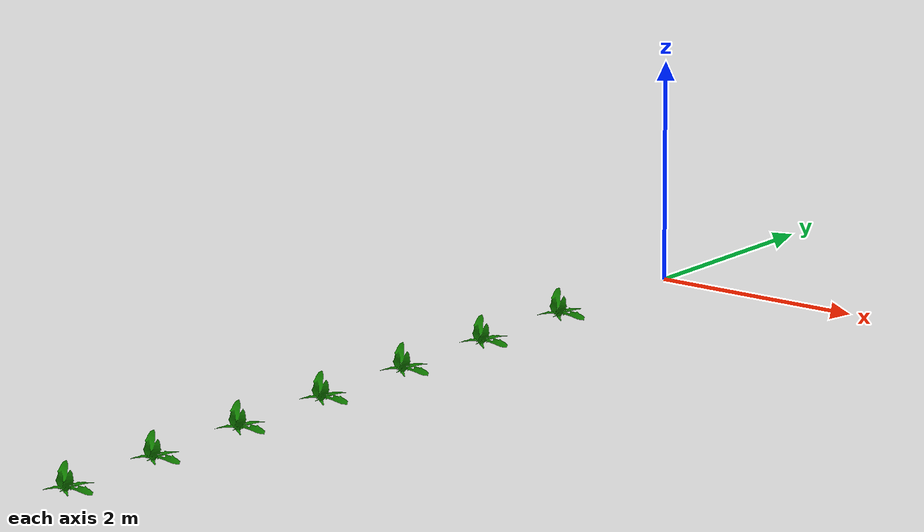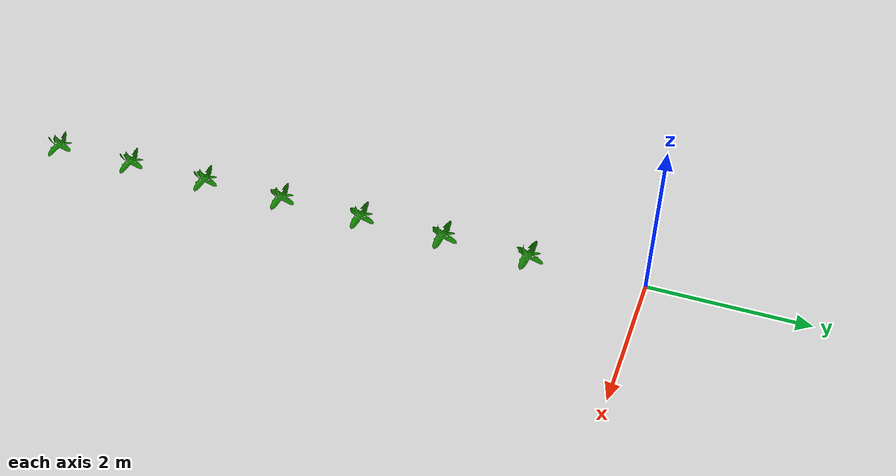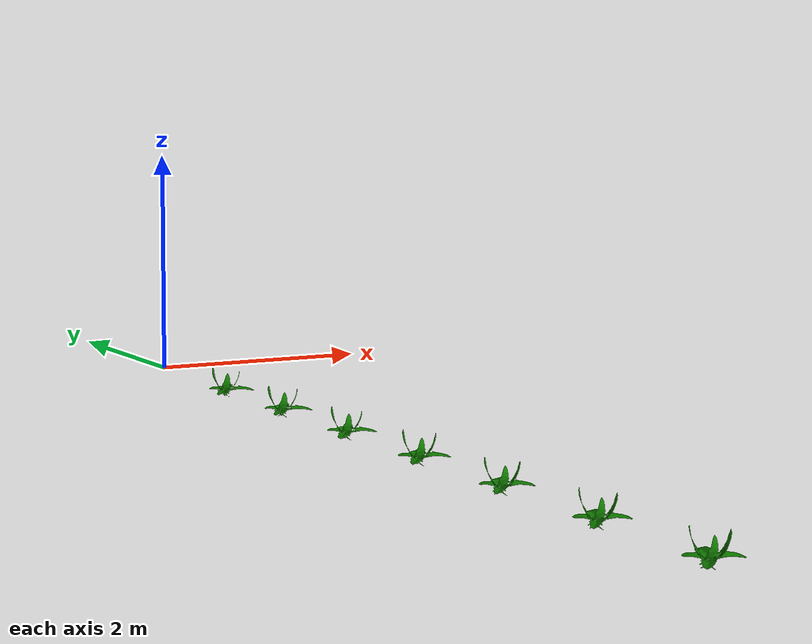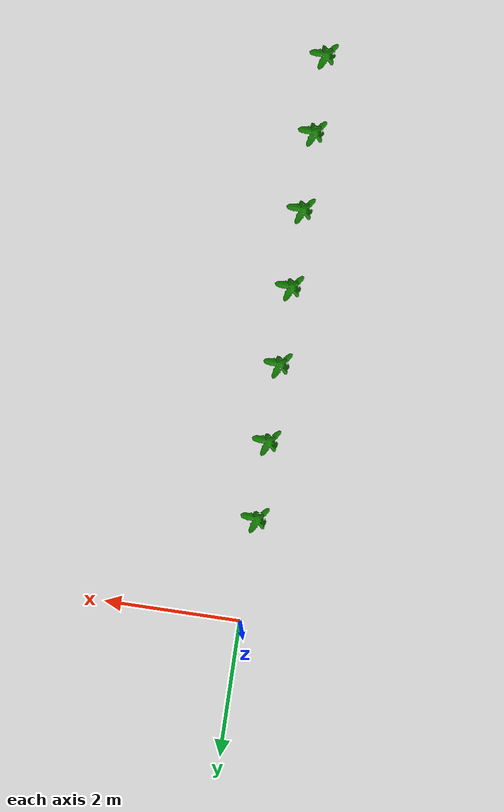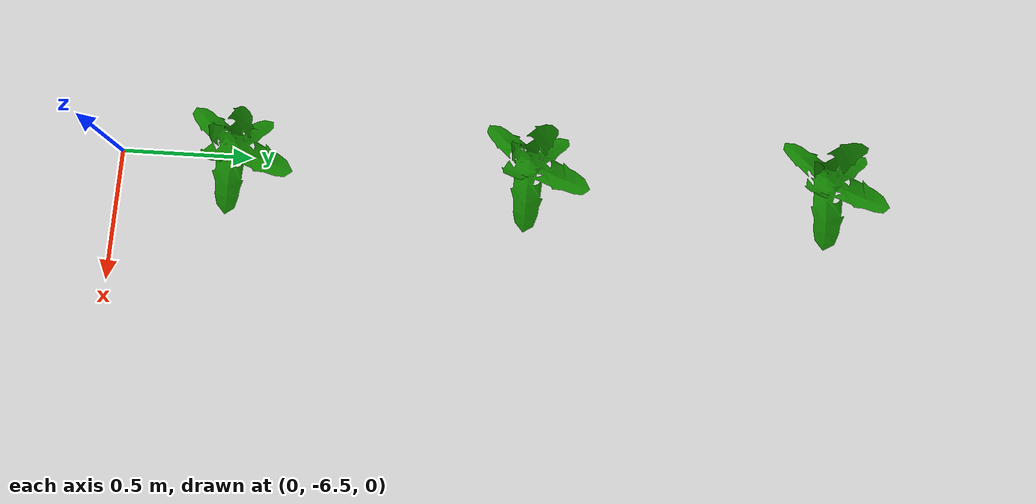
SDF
<sdf version='1.6'>
  <model name='plant_single_row'>
  <static>true</static>
    <link name='base_link'>
      <visual name='base_link_visual'>
        <pose frame=''>0 0 0 0 0 0</pose>
        <geometry>
          <mesh>
            <scale>1 1 1</scale>
            <uri>model://plant_single_row/plant_single.dae</uri>
          </mesh>
        </geometry>
      </visual>
    </link>
  </model>
</sdf>
